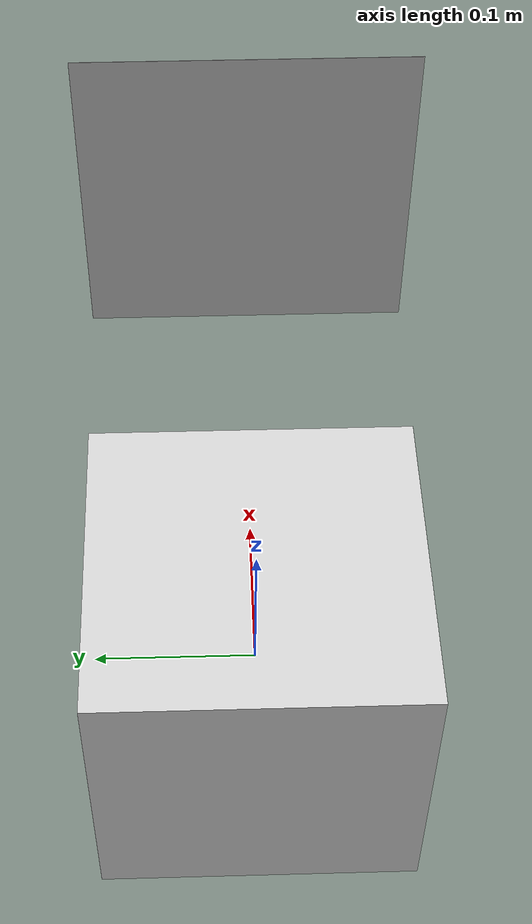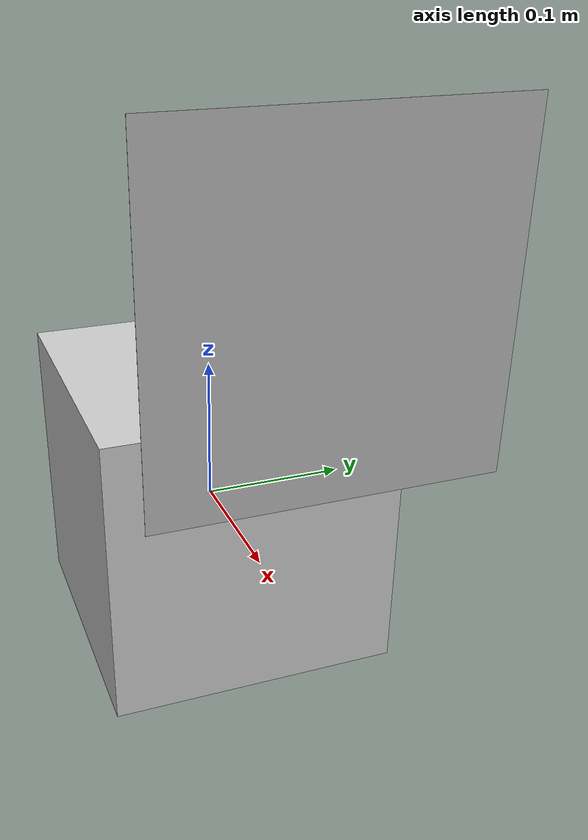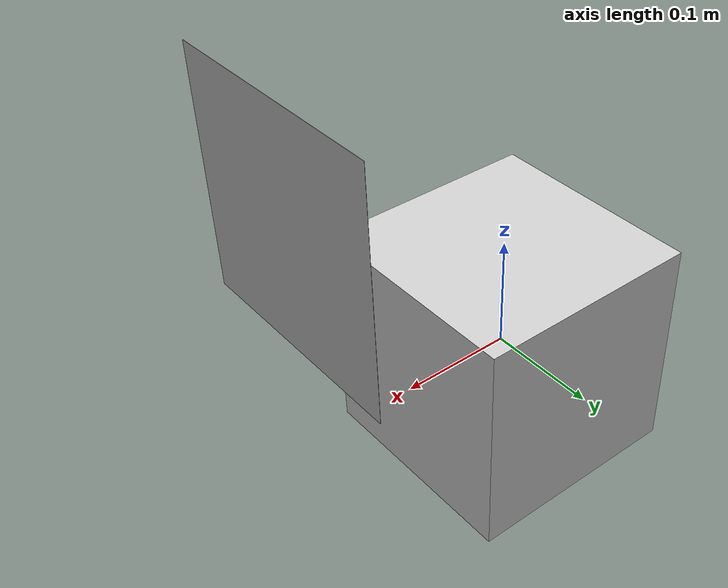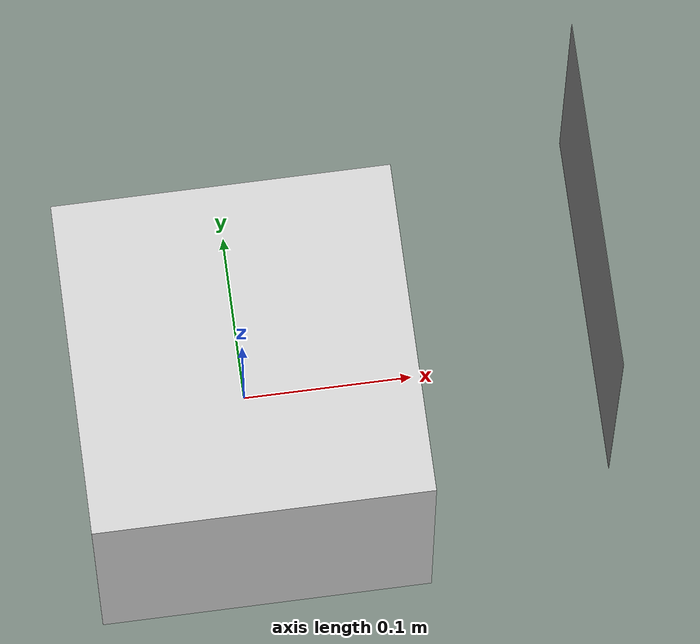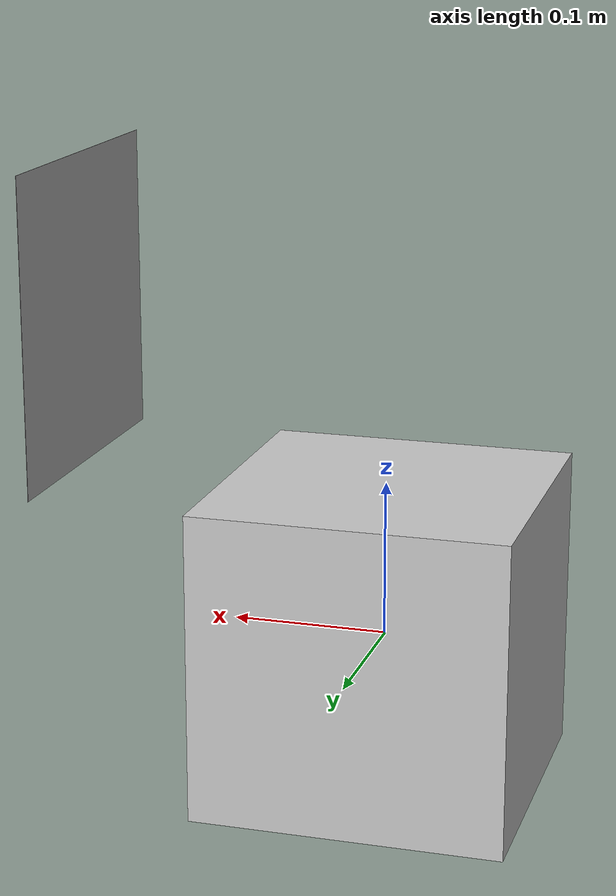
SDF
<sdf version="1.7">
  <world name="default">
    <include>
      <uri>model://aruco_box</uri>
      <pose>0 0 0 0 0 0</pose>
    </include>
  </world>
</sdf>

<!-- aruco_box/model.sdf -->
<sdf version="1.7">
  <model name="aruco_box">
    <static>true</static>

    <!-- Box where tag will be displayed -->
    <link name="link">
      <pose>0 0 0 0 0 0</pose>

      <visual name="box">
        <geometry>
          <box>
            <size>0.2 0.2 0.2</size>
          </box>
        </geometry>
        <material>
          <ambient>0.8 0.8 0.8 1</ambient>
          <diffuse>0.8 0.8 0.8 1</diffuse>
        </material>
      </visual>

      <!-- Flat plane with ArUco texture -->
      <visual name="aruco_tag">
      <pose>0.2 0 0.2 0 0 0</pose>
      <geometry>
        <plane>
          <normal>1 0 0</normal>
          <size>0.2 0.2</size>
        </plane>
      </geometry>
      <texture>
        <diffuse>file:///root/ros2_ws/models/aruco_box/materials/textures/aruco_1.png</diffuse>
      </texture>
    </visual>
    </link>
  </model>
</sdf>
